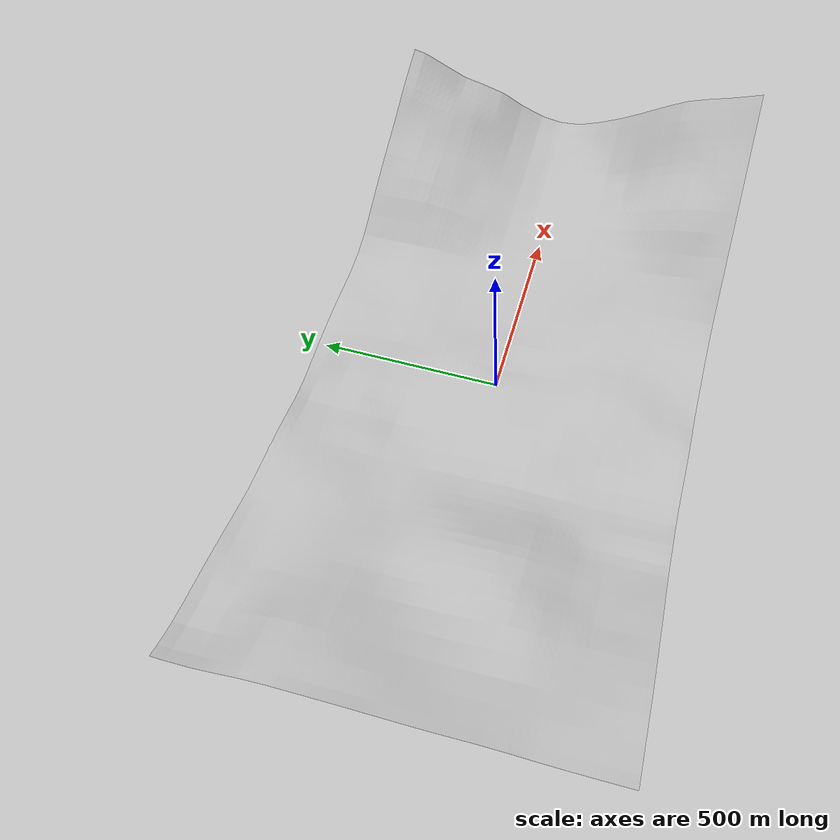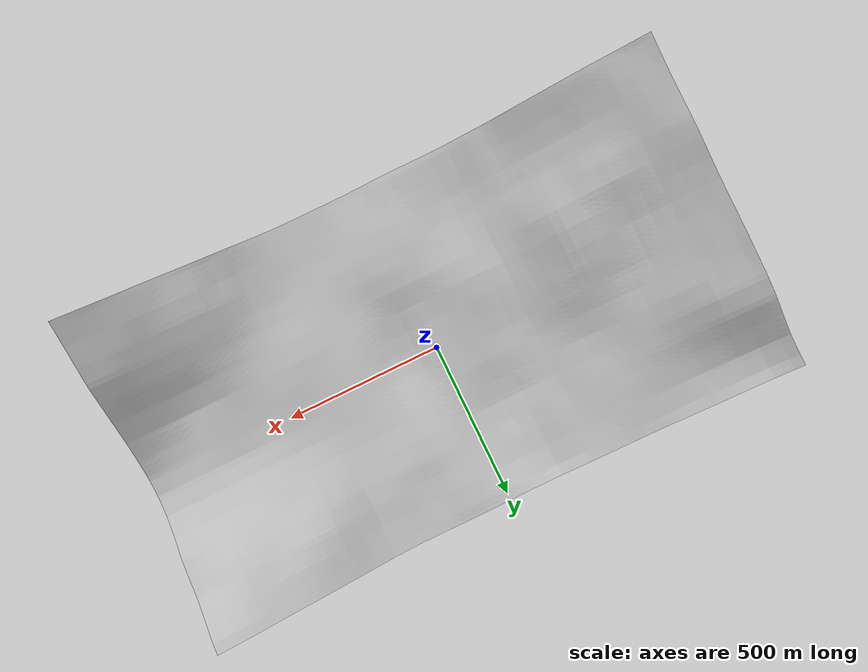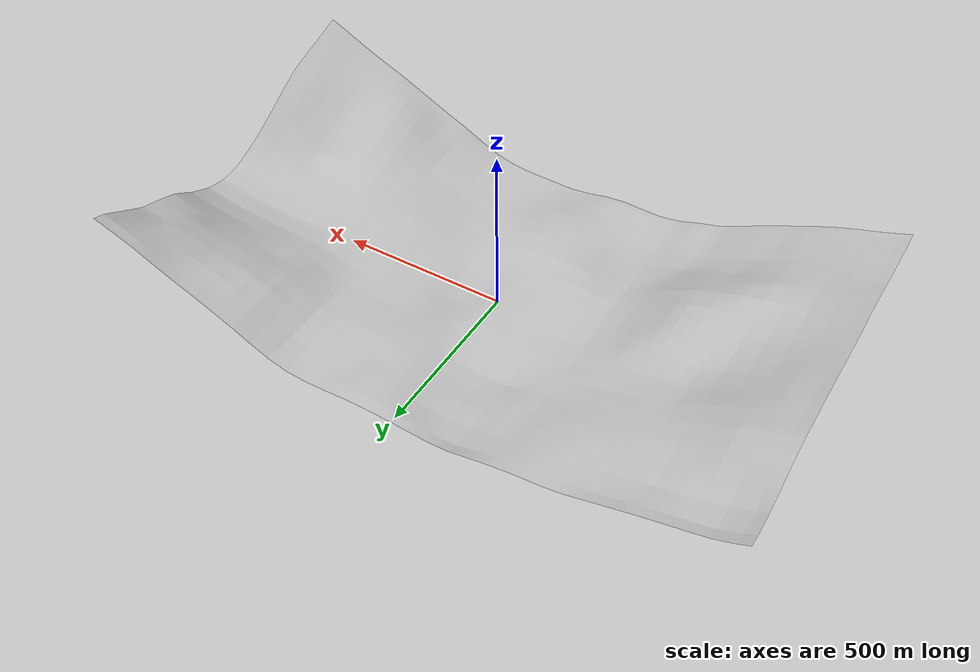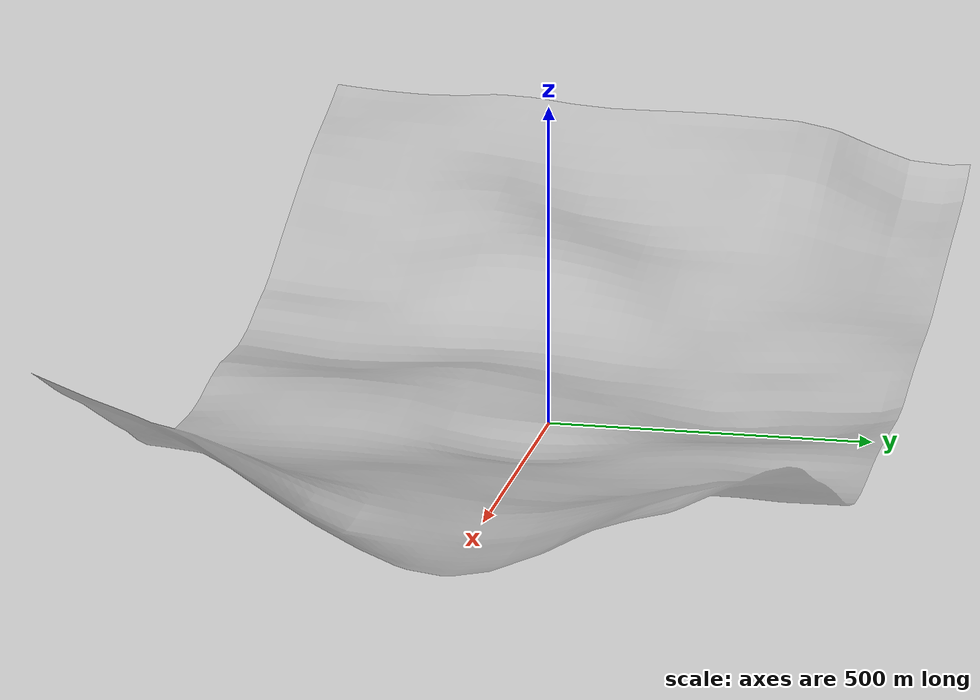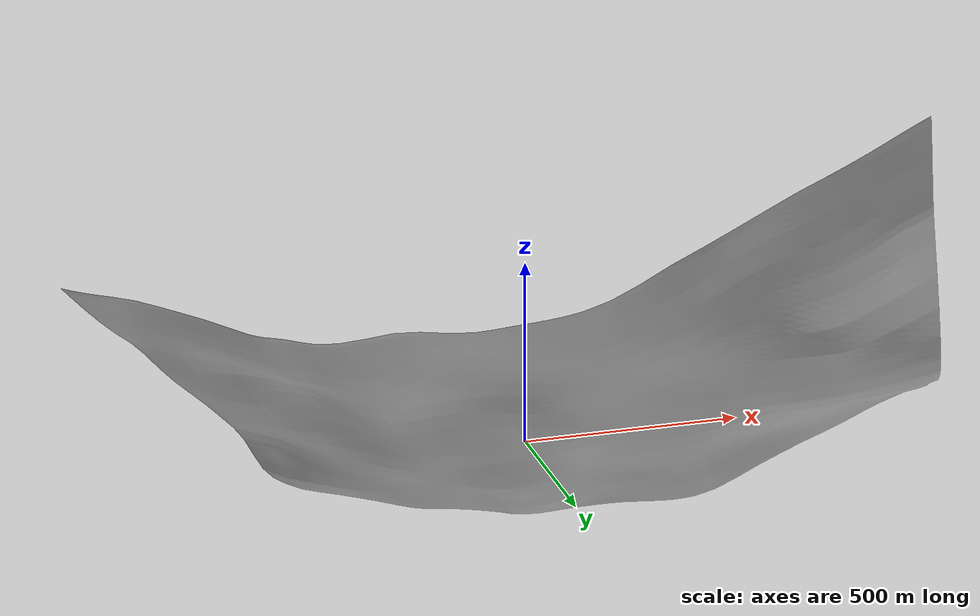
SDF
<?xml version="1.0" ?>
<sdf version="1.4">
  <model name="v3">
	<static>true</static>
	<link name="link">
	  <pose>0 0 -69.1 0 0 0</pose>
	    <collision name="my_collision">
		<geometry>
                   <mesh><uri>model://v3/untitled.dae</uri></mesh>
		 </geometry>
	    </collision>

	    <visual name="my_visual">
		<geometry>
                   <mesh><uri>model://v3/untitled.dae</uri></mesh>
		 </geometry>
	    </visual>
	</link>
    </model>
</sdf>
